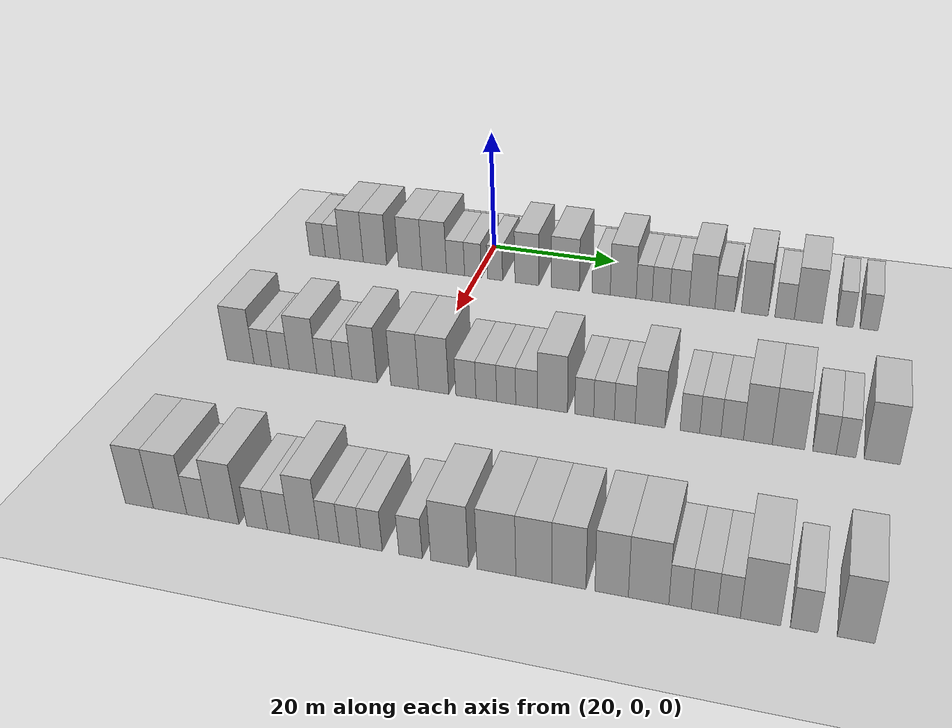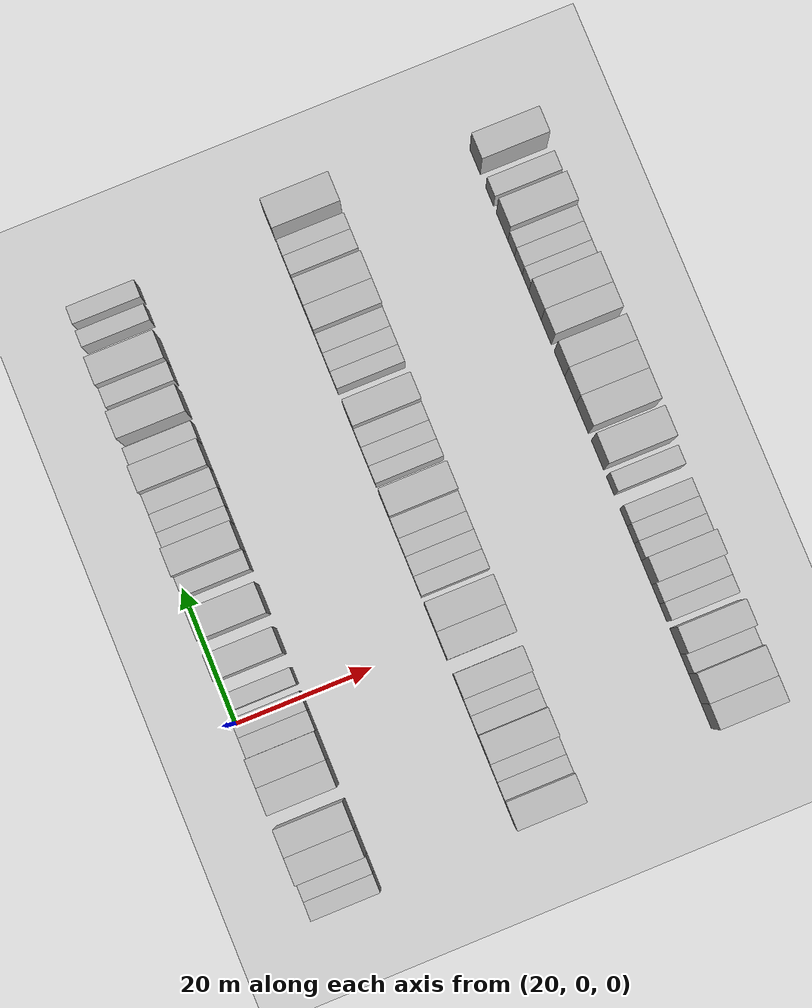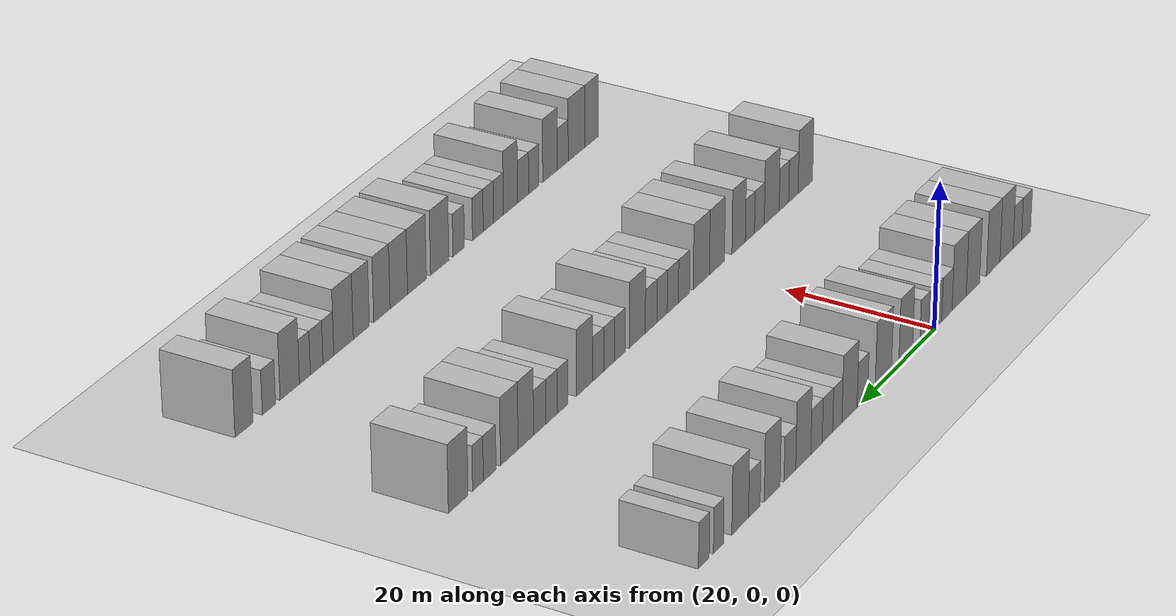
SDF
<sdf version="1.6">
 <world name="default">
  <include><name>ground_plane_1</name><uri>model://HANNAS_ground_plane</uri></include>
  <model name="building_107">
   <static>1</static>
   <pose>25.0000 -26.8414 0 0.000000 0.000000 0.000000</pose>
   <link name="link">
    <pose>0 0 3.00 0 0 0</pose>
    <collision name="collision"><geometry><box><size>10.0000 2.7232 6.0000</size></box></geometry></collision>
    <visual name="visual">
     <cast_shadows>0</cast_shadows>
     <geometry><box><size>10.0000 2.7232 6.0000</size></box></geometry>
     <material>
      <script>
       <uri>model://HANNAS_wall/materials/scripts</uri>
       <uri>model://HANNAS_wall/materials/textures</uri>
       <name>vrc/HANNAS_wall</name>
      </script>
     </material>
    </visual>
   </link>
  </model>
  <model name="building_108">
   <static>1</static>
   <pose>25.0000 -24.1851 0 0.000000 0.000000 0.000000</pose>
   <link name="link">
    <pose>0 0 3.00 0 0 0</pose>
    <collision name="collision"><geometry><box><size>10.0000 2.5895 6.0000</size></box></geometry></collision>
    <visual name="visual">
     <cast_shadows>0</cast_shadows>
     <geometry><box><size>10.0000 2.5895 6.0000</size></box></geometry>
     <material>
      <script>
       <uri>model://HANNAS_wall/materials/scripts</uri>
       <uri>model://HANNAS_wall/materials/textures</uri>
       <name>vrc/HANNAS_wall</name>
      </script>
     </material>
    </visual>
   </link>
  </model>
  <model name="building_109">
   <static>1</static>
   <pose>25.0000 -20.9219 0 0.000000 0.000000 0.000000</pose>
   <link name="link">
    <pose>0 0 4.50 0 0 0</pose>
    <collision name="collision"><geometry><box><size>10.0000 3.9367 9.0000</size></box></geometry></collision>
    <visual name="visual">
     <cast_shadows>0</cast_shadows>
     <geometry><box><size>10.0000 3.9367 9.0000</size></box></geometry>
     <material>
      <script>
       <uri>model://HANNAS_wall/materials/scripts</uri>
       <uri>model://HANNAS_wall/materials/textures</uri>
       <name>vrc/HANNAS_wall</name>
      </script>
     </material>
    </visual>
   </link>
  </model>
  <model name="building_110">
   <static>1</static>
   <pose>25.0000 -16.9616 0 0.000000 0.000000 0.000000</pose>
   <link name="link">
    <pose>0 0 4.50 0 0 0</pose>
    <collision name="collision"><geometry><box><size>10.0000 3.9840 9.0000</size></box></geometry></collision>
    <visual name="visual">
     <cast_shadows>0</cast_shadows>
     <geometry><box><size>10.0000 3.9840 9.0000</size></box></geometry>
     <material>
      <script>
       <uri>model://HANNAS_wall/materials/scripts</uri>
       <uri>model://HANNAS_wall/materials/textures</uri>
       <name>vrc/HANNAS_wall</name>
      </script>
     </material>
    </visual>
   </link>
  </model>
  <model name="building_111">
   <static>1</static>
   <pose>25.0000 -11.0109 0 0.000000 0.000000 0.000000</pose>
   <link name="link">
    <pose>0 0 4.50 0 0 0</pose>
    <collision name="collision"><geometry><box><size>10.0000 3.9174 9.0000</size></box></geometry></collision>
    <visual name="visual">
     <cast_shadows>0</cast_shadows>
     <geometry><box><size>10.0000 3.9174 9.0000</size></box></geometry>
     <material>
      <script>
       <uri>model://HANNAS_wall/materials/scripts</uri>
       <uri>model://HANNAS_wall/materials/textures</uri>
       <name>vrc/HANNAS_wall</name>
      </script>
     </material>
    </visual>
   </link>
  </model>
  <model name="building_112">
   <static>1</static>
   <pose>25.0000 -7.0067 0 0.000000 0.000000 0.000000</pose>
   <link name="link">
    <pose>0 0 4.50 0 0 0</pose>
    <collision name="collision"><geometry><box><size>10.0000 4.0909 9.0000</size></box></geometry></collision>
    <visual name="visual">
     <cast_shadows>0</cast_shadows>
     <geometry><box><size>10.0000 4.0909 9.0000</size></box></geometry>
     <material>
      <script>
       <uri>model://HANNAS_wall/materials/scripts</uri>
       <uri>model://HANNAS_wall/materials/textures</uri>
       <name>vrc/HANNAS_wall</name>
      </script>
     </material>
    </visual>
   </link>
  </model>
  <model name="building_113">
   <static>1</static>
   <pose>25.0000 -3.4789 0 0.000000 0.000000 0.000000</pose>
   <link name="link">
    <pose>0 0 3.00 0 0 0</pose>
    <collision name="collision"><geometry><box><size>10.0000 2.9646 6.0000</size></box></geometry></collision>
    <visual name="visual">
     <cast_shadows>0</cast_shadows>
     <geometry><box><size>10.0000 2.9646 6.0000</size></box></geometry>
     <material>
      <script>
       <uri>model://HANNAS_wall/materials/scripts</uri>
       <uri>model://HANNAS_wall/materials/textures</uri>
       <name>vrc/HANNAS_wall</name>
      </script>
     </material>
    </visual>
   </link>
  </model>
  <model name="building_114">
   <static>1</static>
   <pose>25.0000 -0.6291 0 0.000000 0.000000 0.000000</pose>
   <link name="link">
    <pose>0 0 3.00 0 0 0</pose>
    <collision name="collision"><geometry><box><size>10.0000 2.7350 6.0000</size></box></geometry></collision>
    <visual name="visual">
     <cast_shadows>0</cast_shadows>
     <geometry><box><size>10.0000 2.7350 6.0000</size></box></geometry>
     <material>
      <script>
       <uri>model://HANNAS_wall/materials/scripts</uri>
       <uri>model://HANNAS_wall/materials/textures</uri>
       <name>vrc/HANNAS_wall</name>
      </script>
     </material>
    </visual>
   </link>
  </model>
  <model name="building_115">
   <static>1</static>
   <pose>25.0000 2.9704 0 0.000000 0.000000 0.000000</pose>
   <link name="link">
    <pose>0 0 3.00 0 0 0</pose>
    <collision name="collision"><geometry><box><size>10.0000 2.4640 6.0000</size></box></geometry></collision>
    <visual name="visual">
     <cast_shadows>0</cast_shadows>
     <geometry><box><size>10.0000 2.4640 6.0000</size></box></geometry>
     <material>
      <script>
       <uri>model://HANNAS_wall/materials/scripts</uri>
       <uri>model://HANNAS_wall/materials/textures</uri>
       <name>vrc/HANNAS_wall</name>
      </script>
     </material>
    </visual>
   </link>
  </model>
  <model name="building_116">
   <static>1</static>
   <pose>25.0000 8.1107 0 0.000000 0.000000 0.000000</pose>
   <link name="link">
    <pose>0 0 4.50 0 0 0</pose>
    <collision name="collision"><geometry><box><size>10.0000 3.8165 9.0000</size></box></geometry></collision>
    <visual name="visual">
     <cast_shadows>0</cast_shadows>
     <geometry><box><size>10.0000 3.8165 9.0000</size></box></geometry>
     <material>
      <script>
       <uri>model://HANNAS_wall/materials/scripts</uri>
       <uri>model://HANNAS_wall/materials/textures</uri>
       <name>vrc/HANNAS_wall</name>
      </script>
     </material>
    </visual>
   </link>
  </model>
  <model name="building_117">
   <static>1</static>
   <pose>25.0000 14.2396 0 0.000000 0.000000 0.000000</pose>
   <link name="link">
    <pose>0 0 4.50 0 0 0</pose>
    <collision name="collision"><geometry><box><size>10.0000 4.4413 9.0000</size></box></geometry></collision>
    <visual name="visual">
     <cast_shadows>0</cast_shadows>
     <geometry><box><size>10.0000 4.4413 9.0000</size></box></geometry>
     <material>
      <script>
       <uri>model://HANNAS_wall/materials/scripts</uri>
       <uri>model://HANNAS_wall/materials/textures</uri>
       <name>vrc/HANNAS_wall</name>
      </script>
     </material>
    </visual>
   </link>
  </model>
  <model name="building_118">
   <static>1</static>
   <pose>25.0000 19.8799 0 0.000000 0.000000 0.000000</pose>
   <link name="link">
    <pose>0 0 3.00 0 0 0</pose>
    <collision name="collision"><geometry><box><size>10.0000 2.8394 6.0000</size></box></geometry></collision>
    <visual name="visual">
     <cast_shadows>0</cast_shadows>
     <geometry><box><size>10.0000 2.8394 6.0000</size></box></geometry>
     <material>
      <script>
       <uri>model://HANNAS_wall/materials/scripts</uri>
       <uri>model://HANNAS_wall/materials/textures</uri>
       <name>vrc/HANNAS_wall</name>
      </script>
     </material>
    </visual>
   </link>
  </model>
  <model name="building_119">
   <static>1</static>
   <pose>25.0000 23.3126 0 0.000000 0.000000 0.000000</pose>
   <link name="link">
    <pose>0 0 4.50 0 0 0</pose>
    <collision name="collision"><geometry><box><size>10.0000 4.0260 9.0000</size></box></geometry></collision>
    <visual name="visual">
     <cast_shadows>0</cast_shadows>
     <geometry><box><size>10.0000 4.0260 9.0000</size></box></geometry>
     <material>
      <script>
       <uri>model://HANNAS_wall/materials/scripts</uri>
       <uri>model://HANNAS_wall/materials/textures</uri>
       <name>vrc/HANNAS_wall</name>
      </script>
     </material>
    </visual>
   </link>
  </model>
  <model name="building_120">
   <static>1</static>
   <pose>25.0000 26.5560 0 0.000000 0.000000 0.000000</pose>
   <link name="link">
    <pose>0 0 3.00 0 0 0</pose>
    <collision name="collision"><geometry><box><size>10.0000 2.4607 6.0000</size></box></geometry></collision>
    <visual name="visual">
     <cast_shadows>0</cast_shadows>
     <geometry><box><size>10.0000 2.4607 6.0000</size></box></geometry>
     <material>
      <script>
       <uri>model://HANNAS_wall/materials/scripts</uri>
       <uri>model://HANNAS_wall/materials/textures</uri>
       <name>vrc/HANNAS_wall</name>
      </script>
     </material>
    </visual>
   </link>
  </model>
  <model name="building_121">
   <static>1</static>
   <pose>25.0000 29.1325 0 0.000000 0.000000 0.000000</pose>
   <link name="link">
    <pose>0 0 3.00 0 0 0</pose>
    <collision name="collision"><geometry><box><size>10.0000 2.6924 6.0000</size></box></geometry></collision>
    <visual name="visual">
     <cast_shadows>0</cast_shadows>
     <geometry><box><size>10.0000 2.6924 6.0000</size></box></geometry>
     <material>
      <script>
       <uri>model://HANNAS_wall/materials/scripts</uri>
       <uri>model://HANNAS_wall/materials/textures</uri>
       <name>vrc/HANNAS_wall</name>
      </script>
     </material>
    </visual>
   </link>
  </model>
  <model name="building_122">
   <static>1</static>
   <pose>25.0000 31.9554 0 0.000000 0.000000 0.000000</pose>
   <link name="link">
    <pose>0 0 3.00 0 0 0</pose>
    <collision name="collision"><geometry><box><size>10.0000 2.9533 6.0000</size></box></geometry></collision>
    <visual name="visual">
     <cast_shadows>0</cast_shadows>
     <geometry><box><size>10.0000 2.9533 6.0000</size></box></geometry>
     <material>
      <script>
       <uri>model://HANNAS_wall/materials/scripts</uri>
       <uri>model://HANNAS_wall/materials/textures</uri>
       <name>vrc/HANNAS_wall</name>
      </script>
     </material>
    </visual>
   </link>
  </model>
  <model name="building_123">
   <static>1</static>
   <pose>25.0000 35.3695 0 0.000000 0.000000 0.000000</pose>
   <link name="link">
    <pose>0 0 4.50 0 0 0</pose>
    <collision name="collision"><geometry><box><size>10.0000 3.8748 9.0000</size></box></geometry></collision>
    <visual name="visual">
     <cast_shadows>0</cast_shadows>
     <geometry><box><size>10.0000 3.8748 9.0000</size></box></geometry>
     <material>
      <script>
       <uri>model://HANNAS_wall/materials/scripts</uri>
       <uri>model://HANNAS_wall/materials/textures</uri>
       <name>vrc/HANNAS_wall</name>
      </script>
     </material>
    </visual>
   </link>
  </model>
  <model name="building_124">
   <static>1</static>
   <pose>25.0000 38.7760 0 0.000000 0.000000 0.000000</pose>
   <link name="link">
    <pose>0 0 3.00 0 0 0</pose>
    <collision name="collision"><geometry><box><size>10.0000 2.9383 6.0000</size></box></geometry></collision>
    <visual name="visual">
     <cast_shadows>0</cast_shadows>
     <geometry><box><size>10.0000 2.9383 6.0000</size></box></geometry>
     <material>
      <script>
       <uri>model://HANNAS_wall/materials/scripts</uri>
       <uri>model://HANNAS_wall/materials/textures</uri>
       <name>vrc/HANNAS_wall</name>
      </script>
     </material>
    </visual>
   </link>
  </model>
  <model name="building_125">
   <static>1</static>
   <pose>25.0000 43.2336 0 0.000000 0.000000 0.000000</pose>
   <link name="link">
    <pose>0 0 4.50 0 0 0</pose>
    <collision name="collision"><geometry><box><size>10.0000 3.9769 9.0000</size></box></geometry></collision>
    <visual name="visual">
     <cast_shadows>0</cast_shadows>
     <geometry><box><size>10.0000 3.9769 9.0000</size></box></geometry>
     <material>
      <script>
       <uri>model://HANNAS_wall/materials/scripts</uri>
       <uri>model://HANNAS_wall/materials/textures</uri>
       <name>vrc/HANNAS_wall</name>
      </script>
     </material>
    </visual>
   </link>
  </model>
  <model name="building_126">
   <static>1</static>
   <pose>25.0000 47.6449 0 0.000000 0.000000 0.000000</pose>
   <link name="link">
    <pose>0 0 3.00 0 0 0</pose>
    <collision name="collision"><geometry><box><size>10.0000 2.8457 6.0000</size></box></geometry></collision>
    <visual name="visual">
     <cast_shadows>0</cast_shadows>
     <geometry><box><size>10.0000 2.8457 6.0000</size></box></geometry>
     <material>
      <script>
       <uri>model://HANNAS_wall/materials/scripts</uri>
       <uri>model://HANNAS_wall/materials/textures</uri>
       <name>vrc/HANNAS_wall</name>
      </script>
     </material>
    </visual>
   </link>
  </model>
  <model name="building_127">
   <static>1</static>
   <pose>25.0000 51.1148 0 0.000000 0.000000 0.000000</pose>
   <link name="link">
    <pose>0 0 4.50 0 0 0</pose>
    <collision name="collision"><geometry><box><size>10.0000 4.0939 9.0000</size></box></geometry></collision>
    <visual name="visual">
     <cast_shadows>0</cast_shadows>
     <geometry><box><size>10.0000 4.0939 9.0000</size></box></geometry>
     <material>
      <script>
       <uri>model://HANNAS_wall/materials/scripts</uri>
       <uri>model://HANNAS_wall/materials/textures</uri>
       <name>vrc/HANNAS_wall</name>
      </script>
     </material>
    </visual>
   </link>
  </model>
  <model name="building_128">
   <static>1</static>
   <pose>25.0000 56.3729 0 0.000000 0.000000 0.000000</pose>
   <link name="link">
    <pose>0 0 3.00 0 0 0</pose>
    <collision name="collision"><geometry><box><size>10.0000 2.4222 6.0000</size></box></geometry></collision>
    <visual name="visual">
     <cast_shadows>0</cast_shadows>
     <geometry><box><size>10.0000 2.4222 6.0000</size></box></geometry>
     <material>
      <script>
       <uri>model://HANNAS_wall/materials/scripts</uri>
       <uri>model://HANNAS_wall/materials/textures</uri>
       <name>vrc/HANNAS_wall</name>
      </script>
     </material>
    </visual>
   </link>
  </model>
  <model name="building_129">
   <static>1</static>
   <pose>25.0000 59.8632 0 0.000000 0.000000 0.000000</pose>
   <link name="link">
    <pose>0 0 3.00 0 0 0</pose>
    <collision name="collision"><geometry><box><size>10.0000 2.5585 6.0000</size></box></geometry></collision>
    <visual name="visual">
     <cast_shadows>0</cast_shadows>
     <geometry><box><size>10.0000 2.5585 6.0000</size></box></geometry>
     <material>
      <script>
       <uri>model://HANNAS_wall/materials/scripts</uri>
       <uri>model://HANNAS_wall/materials/textures</uri>
       <name>vrc/HANNAS_wall</name>
      </script>
     </material>
    </visual>
   </link>
  </model>
  <model name="building_334">
   <static>1</static>
   <pose>55.0000 -25.3010 0 0.000000 0.000000 0.000000</pose>
   <link name="link">
    <pose>0 0 4.50 0 0 0</pose>
    <collision name="collision"><geometry><box><size>10.0000 4.1168 9.0000</size></box></geometry></collision>
    <visual name="visual">
     <cast_shadows>0</cast_shadows>
     <geometry><box><size>10.0000 4.1168 9.0000</size></box></geometry>
     <material>
      <script>
       <uri>model://HANNAS_wall/materials/scripts</uri>
       <uri>model://HANNAS_wall/materials/textures</uri>
       <name>vrc/HANNAS_wall</name>
      </script>
     </material>
    </visual>
   </link>
  </model>
  <model name="building_335">
   <static>1</static>
   <pose>55.0000 -21.9201 0 0.000000 0.000000 0.000000</pose>
   <link name="link">
    <pose>0 0 3.00 0 0 0</pose>
    <collision name="collision"><geometry><box><size>10.0000 2.6448 6.0000</size></box></geometry></collision>
    <visual name="visual">
     <cast_shadows>0</cast_shadows>
     <geometry><box><size>10.0000 2.6448 6.0000</size></box></geometry>
     <material>
      <script>
       <uri>model://HANNAS_wall/materials/scripts</uri>
       <uri>model://HANNAS_wall/materials/textures</uri>
       <name>vrc/HANNAS_wall</name>
      </script>
     </material>
    </visual>
   </link>
  </model>
  <model name="building_336">
   <static>1</static>
   <pose>55.0000 -19.2560 0 0.000000 0.000000 0.000000</pose>
   <link name="link">
    <pose>0 0 3.00 0 0 0</pose>
    <collision name="collision"><geometry><box><size>10.0000 2.6834 6.0000</size></box></geometry></collision>
    <visual name="visual">
     <cast_shadows>0</cast_shadows>
     <geometry><box><size>10.0000 2.6834 6.0000</size></box></geometry>
     <material>
      <script>
       <uri>model://HANNAS_wall/materials/scripts</uri>
       <uri>model://HANNAS_wall/materials/textures</uri>
       <name>vrc/HANNAS_wall</name>
      </script>
     </material>
    </visual>
   </link>
  </model>
  <model name="building_337">
   <static>1</static>
   <pose>55.0000 -15.8534 0 0.000000 0.000000 0.000000</pose>
   <link name="link">
    <pose>0 0 4.50 0 0 0</pose>
    <collision name="collision"><geometry><box><size>10.0000 4.1218 9.0000</size></box></geometry></collision>
    <visual name="visual">
     <cast_shadows>0</cast_shadows>
     <geometry><box><size>10.0000 4.1218 9.0000</size></box></geometry>
     <material>
      <script>
       <uri>model://HANNAS_wall/materials/scripts</uri>
       <uri>model://HANNAS_wall/materials/textures</uri>
       <name>vrc/HANNAS_wall</name>
      </script>
     </material>
    </visual>
   </link>
  </model>
  <model name="building_338">
   <static>1</static>
   <pose>55.0000 -12.4436 0 0.000000 0.000000 0.000000</pose>
   <link name="link">
    <pose>0 0 3.00 0 0 0</pose>
    <collision name="collision"><geometry><box><size>10.0000 2.6978 6.0000</size></box></geometry></collision>
    <visual name="visual">
     <cast_shadows>0</cast_shadows>
     <geometry><box><size>10.0000 2.6978 6.0000</size></box></geometry>
     <material>
      <script>
       <uri>model://HANNAS_wall/materials/scripts</uri>
       <uri>model://HANNAS_wall/materials/textures</uri>
       <name>vrc/HANNAS_wall</name>
      </script>
     </material>
    </visual>
   </link>
  </model>
  <model name="building_339">
   <static>1</static>
   <pose>55.0000 -9.8529 0 0.000000 0.000000 0.000000</pose>
   <link name="link">
    <pose>0 0 3.00 0 0 0</pose>
    <collision name="collision"><geometry><box><size>10.0000 2.4837 6.0000</size></box></geometry></collision>
    <visual name="visual">
     <cast_shadows>0</cast_shadows>
     <geometry><box><size>10.0000 2.4837 6.0000</size></box></geometry>
     <material>
      <script>
       <uri>model://HANNAS_wall/materials/scripts</uri>
       <uri>model://HANNAS_wall/materials/textures</uri>
       <name>vrc/HANNAS_wall</name>
      </script>
     </material>
    </visual>
   </link>
  </model>
  <model name="building_340">
   <static>1</static>
   <pose>55.0000 -6.7780 0 0.000000 0.000000 0.000000</pose>
   <link name="link">
    <pose>0 0 4.50 0 0 0</pose>
    <collision name="collision"><geometry><box><size>10.0000 3.6661 9.0000</size></box></geometry></collision>
    <visual name="visual">
     <cast_shadows>0</cast_shadows>
     <geometry><box><size>10.0000 3.6661 9.0000</size></box></geometry>
     <material>
      <script>
       <uri>model://HANNAS_wall/materials/scripts</uri>
       <uri>model://HANNAS_wall/materials/textures</uri>
       <name>vrc/HANNAS_wall</name>
      </script>
     </material>
    </visual>
   </link>
  </model>
  <model name="building_341">
   <static>1</static>
   <pose>55.0000 -0.9476 0 0.000000 0.000000 0.000000</pose>
   <link name="link">
    <pose>0 0 4.50 0 0 0</pose>
    <collision name="collision"><geometry><box><size>10.0000 3.9945 9.0000</size></box></geometry></collision>
    <visual name="visual">
     <cast_shadows>0</cast_shadows>
     <geometry><box><size>10.0000 3.9945 9.0000</size></box></geometry>
     <material>
      <script>
       <uri>model://HANNAS_wall/materials/scripts</uri>
       <uri>model://HANNAS_wall/materials/textures</uri>
       <name>vrc/HANNAS_wall</name>
      </script>
     </material>
    </visual>
   </link>
  </model>
  <model name="building_342">
   <static>1</static>
   <pose>55.0000 3.1972 0 0.000000 0.000000 0.000000</pose>
   <link name="link">
    <pose>0 0 4.50 0 0 0</pose>
    <collision name="collision"><geometry><box><size>10.0000 4.2952 9.0000</size></box></geometry></collision>
    <visual name="visual">
     <cast_shadows>0</cast_shadows>
     <geometry><box><size>10.0000 4.2952 9.0000</size></box></geometry>
     <material>
      <script>
       <uri>model://HANNAS_wall/materials/scripts</uri>
       <uri>model://HANNAS_wall/materials/textures</uri>
       <name>vrc/HANNAS_wall</name>
      </script>
     </material>
    </visual>
   </link>
  </model>
  <model name="building_343">
   <static>1</static>
   <pose>55.0000 7.7657 0 0.000000 0.000000 0.000000</pose>
   <link name="link">
    <pose>0 0 3.00 0 0 0</pose>
    <collision name="collision"><geometry><box><size>10.0000 2.8419 6.0000</size></box></geometry></collision>
    <visual name="visual">
     <cast_shadows>0</cast_shadows>
     <geometry><box><size>10.0000 2.8419 6.0000</size></box></geometry>
     <material>
      <script>
       <uri>model://HANNAS_wall/materials/scripts</uri>
       <uri>model://HANNAS_wall/materials/textures</uri>
       <name>vrc/HANNAS_wall</name>
      </script>
     </material>
    </visual>
   </link>
  </model>
  <model name="building_344">
   <static>1</static>
   <pose>55.0000 10.6268 0 0.000000 0.000000 0.000000</pose>
   <link name="link">
    <pose>0 0 3.00 0 0 0</pose>
    <collision name="collision"><geometry><box><size>10.0000 2.8801 6.0000</size></box></geometry></collision>
    <visual name="visual">
     <cast_shadows>0</cast_shadows>
     <geometry><box><size>10.0000 2.8801 6.0000</size></box></geometry>
     <material>
      <script>
       <uri>model://HANNAS_wall/materials/scripts</uri>
       <uri>model://HANNAS_wall/materials/textures</uri>
       <name>vrc/HANNAS_wall</name>
      </script>
     </material>
    </visual>
   </link>
  </model>
  <model name="building_345">
   <static>1</static>
   <pose>55.0000 13.3863 0 0.000000 0.000000 0.000000</pose>
   <link name="link">
    <pose>0 0 3.00 0 0 0</pose>
    <collision name="collision"><geometry><box><size>10.0000 2.6389 6.0000</size></box></geometry></collision>
    <visual name="visual">
     <cast_shadows>0</cast_shadows>
     <geometry><box><size>10.0000 2.6389 6.0000</size></box></geometry>
     <material>
      <script>
       <uri>model://HANNAS_wall/materials/scripts</uri>
       <uri>model://HANNAS_wall/materials/textures</uri>
       <name>vrc/HANNAS_wall</name>
      </script>
     </material>
    </visual>
   </link>
  </model>
  <model name="building_346">
   <static>1</static>
   <pose>55.0000 16.2051 0 0.000000 0.000000 0.000000</pose>
   <link name="link">
    <pose>0 0 3.00 0 0 0</pose>
    <collision name="collision"><geometry><box><size>10.0000 2.9988 6.0000</size></box></geometry></collision>
    <visual name="visual">
     <cast_shadows>0</cast_shadows>
     <geometry><box><size>10.0000 2.9988 6.0000</size></box></geometry>
     <material>
      <script>
       <uri>model://HANNAS_wall/materials/scripts</uri>
       <uri>model://HANNAS_wall/materials/textures</uri>
       <name>vrc/HANNAS_wall</name>
      </script>
     </material>
    </visual>
   </link>
  </model>
  <model name="building_347">
   <static>1</static>
   <pose>55.0000 19.7422 0 0.000000 0.000000 0.000000</pose>
   <link name="link">
    <pose>0 0 4.50 0 0 0</pose>
    <collision name="collision"><geometry><box><size>10.0000 4.0753 9.0000</size></box></geometry></collision>
    <visual name="visual">
     <cast_shadows>0</cast_shadows>
     <geometry><box><size>10.0000 4.0753 9.0000</size></box></geometry>
     <material>
      <script>
       <uri>model://HANNAS_wall/materials/scripts</uri>
       <uri>model://HANNAS_wall/materials/textures</uri>
       <name>vrc/HANNAS_wall</name>
      </script>
     </material>
    </visual>
   </link>
  </model>
  <model name="building_348">
   <static>1</static>
   <pose>55.0000 24.0510 0 0.000000 0.000000 0.000000</pose>
   <link name="link">
    <pose>0 0 3.00 0 0 0</pose>
    <collision name="collision"><geometry><box><size>10.0000 2.5423 6.0000</size></box></geometry></collision>
    <visual name="visual">
     <cast_shadows>0</cast_shadows>
     <geometry><box><size>10.0000 2.5423 6.0000</size></box></geometry>
     <material>
      <script>
       <uri>model://HANNAS_wall/materials/scripts</uri>
       <uri>model://HANNAS_wall/materials/textures</uri>
       <name>vrc/HANNAS_wall</name>
      </script>
     </material>
    </visual>
   </link>
  </model>
  <model name="building_349">
   <static>1</static>
   <pose>55.0000 26.7047 0 0.000000 0.000000 0.000000</pose>
   <link name="link">
    <pose>0 0 3.00 0 0 0</pose>
    <collision name="collision"><geometry><box><size>10.0000 2.7652 6.0000</size></box></geometry></collision>
    <visual name="visual">
     <cast_shadows>0</cast_shadows>
     <geometry><box><size>10.0000 2.7652 6.0000</size></box></geometry>
     <material>
      <script>
       <uri>model://HANNAS_wall/materials/scripts</uri>
       <uri>model://HANNAS_wall/materials/textures</uri>
       <name>vrc/HANNAS_wall</name>
      </script>
     </material>
    </visual>
   </link>
  </model>
  <model name="building_350">
   <static>1</static>
   <pose>55.0000 29.4556 0 0.000000 0.000000 0.000000</pose>
   <link name="link">
    <pose>0 0 3.00 0 0 0</pose>
    <collision name="collision"><geometry><box><size>10.0000 2.7365 6.0000</size></box></geometry></collision>
    <visual name="visual">
     <cast_shadows>0</cast_shadows>
     <geometry><box><size>10.0000 2.7365 6.0000</size></box></geometry>
     <material>
      <script>
       <uri>model://HANNAS_wall/materials/scripts</uri>
       <uri>model://HANNAS_wall/materials/textures</uri>
       <name>vrc/HANNAS_wall</name>
      </script>
     </material>
    </visual>
   </link>
  </model>
  <model name="building_351">
   <static>1</static>
   <pose>55.0000 32.7823 0 0.000000 0.000000 0.000000</pose>
   <link name="link">
    <pose>0 0 4.50 0 0 0</pose>
    <collision name="collision"><geometry><box><size>10.0000 3.9169 9.0000</size></box></geometry></collision>
    <visual name="visual">
     <cast_shadows>0</cast_shadows>
     <geometry><box><size>10.0000 3.9169 9.0000</size></box></geometry>
     <material>
      <script>
       <uri>model://HANNAS_wall/materials/scripts</uri>
       <uri>model://HANNAS_wall/materials/textures</uri>
       <name>vrc/HANNAS_wall</name>
      </script>
     </material>
    </visual>
   </link>
  </model>
  <model name="building_352">
   <static>1</static>
   <pose>55.0000 38.0110 0 0.000000 0.000000 0.000000</pose>
   <link name="link">
    <pose>0 0 3.00 0 0 0</pose>
    <collision name="collision"><geometry><box><size>10.0000 2.5406 6.0000</size></box></geometry></collision>
    <visual name="visual">
     <cast_shadows>0</cast_shadows>
     <geometry><box><size>10.0000 2.5406 6.0000</size></box></geometry>
     <material>
      <script>
       <uri>model://HANNAS_wall/materials/scripts</uri>
       <uri>model://HANNAS_wall/materials/textures</uri>
       <name>vrc/HANNAS_wall</name>
      </script>
     </material>
    </visual>
   </link>
  </model>
  <model name="building_353">
   <static>1</static>
   <pose>55.0000 40.6466 0 0.000000 0.000000 0.000000</pose>
   <link name="link">
    <pose>0 0 3.00 0 0 0</pose>
    <collision name="collision"><geometry><box><size>10.0000 2.7306 6.0000</size></box></geometry></collision>
    <visual name="visual">
     <cast_shadows>0</cast_shadows>
     <geometry><box><size>10.0000 2.7306 6.0000</size></box></geometry>
     <material>
      <script>
       <uri>model://HANNAS_wall/materials/scripts</uri>
       <uri>model://HANNAS_wall/materials/textures</uri>
       <name>vrc/HANNAS_wall</name>
      </script>
     </material>
    </visual>
   </link>
  </model>
  <model name="building_354">
   <static>1</static>
   <pose>55.0000 43.4528 0 0.000000 0.000000 0.000000</pose>
   <link name="link">
    <pose>0 0 3.00 0 0 0</pose>
    <collision name="collision"><geometry><box><size>10.0000 2.8818 6.0000</size></box></geometry></collision>
    <visual name="visual">
     <cast_shadows>0</cast_shadows>
     <geometry><box><size>10.0000 2.8818 6.0000</size></box></geometry>
     <material>
      <script>
       <uri>model://HANNAS_wall/materials/scripts</uri>
       <uri>model://HANNAS_wall/materials/textures</uri>
       <name>vrc/HANNAS_wall</name>
      </script>
     </material>
    </visual>
   </link>
  </model>
  <model name="building_355">
   <static>1</static>
   <pose>55.0000 46.7141 0 0.000000 0.000000 0.000000</pose>
   <link name="link">
    <pose>0 0 4.50 0 0 0</pose>
    <collision name="collision"><geometry><box><size>10.0000 3.6406 9.0000</size></box></geometry></collision>
    <visual name="visual">
     <cast_shadows>0</cast_shadows>
     <geometry><box><size>10.0000 3.6406 9.0000</size></box></geometry>
     <material>
      <script>
       <uri>model://HANNAS_wall/materials/scripts</uri>
       <uri>model://HANNAS_wall/materials/textures</uri>
       <name>vrc/HANNAS_wall</name>
      </script>
     </material>
    </visual>
   </link>
  </model>
  <model name="building_356">
   <static>1</static>
   <pose>55.0000 50.5705 0 0.000000 0.000000 0.000000</pose>
   <link name="link">
    <pose>0 0 4.50 0 0 0</pose>
    <collision name="collision"><geometry><box><size>10.0000 4.0722 9.0000</size></box></geometry></collision>
    <visual name="visual">
     <cast_shadows>0</cast_shadows>
     <geometry><box><size>10.0000 4.0722 9.0000</size></box></geometry>
     <material>
      <script>
       <uri>model://HANNAS_wall/materials/scripts</uri>
       <uri>model://HANNAS_wall/materials/textures</uri>
       <name>vrc/HANNAS_wall</name>
      </script>
     </material>
    </visual>
   </link>
  </model>
  <model name="building_357">
   <static>1</static>
   <pose>55.0000 55.0524 0 0.000000 0.000000 0.000000</pose>
   <link name="link">
    <pose>0 0 3.00 0 0 0</pose>
    <collision name="collision"><geometry><box><size>10.0000 2.8916 6.0000</size></box></geometry></collision>
    <visual name="visual">
     <cast_shadows>0</cast_shadows>
     <geometry><box><size>10.0000 2.8916 6.0000</size></box></geometry>
     <material>
      <script>
       <uri>model://HANNAS_wall/materials/scripts</uri>
       <uri>model://HANNAS_wall/materials/textures</uri>
       <name>vrc/HANNAS_wall</name>
      </script>
     </material>
    </visual>
   </link>
  </model>
  <model name="building_358">
   <static>1</static>
   <pose>55.0000 57.7194 0 0.000000 0.000000 0.000000</pose>
   <link name="link">
    <pose>0 0 3.00 0 0 0</pose>
    <collision name="collision"><geometry><box><size>10.0000 2.4426 6.0000</size></box></geometry></collision>
    <visual name="visual">
     <cast_shadows>0</cast_shadows>
     <geometry><box><size>10.0000 2.4426 6.0000</size></box></geometry>
     <material>
      <script>
       <uri>model://HANNAS_wall/materials/scripts</uri>
       <uri>model://HANNAS_wall/materials/textures</uri>
       <name>vrc/HANNAS_wall</name>
      </script>
     </material>
    </visual>
   </link>
  </model>
  <model name="building_359">
   <static>1</static>
   <pose>55.0000 62.1311 0 0.000000 0.000000 0.000000</pose>
   <link name="link">
    <pose>0 0 4.50 0 0 0</pose>
    <collision name="collision"><geometry><box><size>10.0000 4.3808 9.0000</size></box></geometry></collision>
    <visual name="visual">
     <cast_shadows>0</cast_shadows>
     <geometry><box><size>10.0000 4.3808 9.0000</size></box></geometry>
     <material>
      <script>
       <uri>model://HANNAS_wall/materials/scripts</uri>
       <uri>model://HANNAS_wall/materials/textures</uri>
       <name>vrc/HANNAS_wall</name>
      </script>
     </material>
    </visual>
   </link>
  </model>
  <model name="building_556">
   <static>1</static>
   <pose>85.0000 -23.3759 0 0.000000 0.000000 0.000000</pose>
   <link name="link">
    <pose>0 0 4.50 0 0 0</pose>
    <collision name="collision"><geometry><box><size>10.0000 3.7076 9.0000</size></box></geometry></collision>
    <visual name="visual">
     <cast_shadows>0</cast_shadows>
     <geometry><box><size>10.0000 3.7076 9.0000</size></box></geometry>
     <material>
      <script>
       <uri>model://HANNAS_wall/materials/scripts</uri>
       <uri>model://HANNAS_wall/materials/textures</uri>
       <name>vrc/HANNAS_wall</name>
      </script>
     </material>
    </visual>
   </link>
  </model>
  <model name="building_557">
   <static>1</static>
   <pose>85.0000 -19.3259 0 0.000000 0.000000 0.000000</pose>
   <link name="link">
    <pose>0 0 4.50 0 0 0</pose>
    <collision name="collision"><geometry><box><size>10.0000 4.3923 9.0000</size></box></geometry></collision>
    <visual name="visual">
     <cast_shadows>0</cast_shadows>
     <geometry><box><size>10.0000 4.3923 9.0000</size></box></geometry>
     <material>
      <script>
       <uri>model://HANNAS_wall/materials/scripts</uri>
       <uri>model://HANNAS_wall/materials/textures</uri>
       <name>vrc/HANNAS_wall</name>
      </script>
     </material>
    </visual>
   </link>
  </model>
  <model name="building_558">
   <static>1</static>
   <pose>85.0000 -15.7031 0 0.000000 0.000000 0.000000</pose>
   <link name="link">
    <pose>0 0 3.00 0 0 0</pose>
    <collision name="collision"><geometry><box><size>10.0000 2.8534 6.0000</size></box></geometry></collision>
    <visual name="visual">
     <cast_shadows>0</cast_shadows>
     <geometry><box><size>10.0000 2.8534 6.0000</size></box></geometry>
     <material>
      <script>
       <uri>model://HANNAS_wall/materials/scripts</uri>
       <uri>model://HANNAS_wall/materials/textures</uri>
       <name>vrc/HANNAS_wall</name>
      </script>
     </material>
    </visual>
   </link>
  </model>
  <model name="building_559">
   <static>1</static>
   <pose>85.0000 -12.3597 0 0.000000 0.000000 0.000000</pose>
   <link name="link">
    <pose>0 0 4.50 0 0 0</pose>
    <collision name="collision"><geometry><box><size>10.0000 3.8334 9.0000</size></box></geometry></collision>
    <visual name="visual">
     <cast_shadows>0</cast_shadows>
     <geometry><box><size>10.0000 3.8334 9.0000</size></box></geometry>
     <material>
      <script>
       <uri>model://HANNAS_wall/materials/scripts</uri>
       <uri>model://HANNAS_wall/materials/textures</uri>
       <name>vrc/HANNAS_wall</name>
      </script>
     </material>
    </visual>
   </link>
  </model>
  <model name="building_560">
   <static>1</static>
   <pose>85.0000 -8.1338 0 0.000000 0.000000 0.000000</pose>
   <link name="link">
    <pose>0 0 3.00 0 0 0</pose>
    <collision name="collision"><geometry><box><size>10.0000 2.6183 6.0000</size></box></geometry></collision>
    <visual name="visual">
     <cast_shadows>0</cast_shadows>
     <geometry><box><size>10.0000 2.6183 6.0000</size></box></geometry>
     <material>
      <script>
       <uri>model://HANNAS_wall/materials/scripts</uri>
       <uri>model://HANNAS_wall/materials/textures</uri>
       <name>vrc/HANNAS_wall</name>
      </script>
     </material>
    </visual>
   </link>
  </model>
  <model name="building_561">
   <static>1</static>
   <pose>85.0000 -5.4077 0 0.000000 0.000000 0.000000</pose>
   <link name="link">
    <pose>0 0 3.00 0 0 0</pose>
    <collision name="collision"><geometry><box><size>10.0000 2.8340 6.0000</size></box></geometry></collision>
    <visual name="visual">
     <cast_shadows>0</cast_shadows>
     <geometry><box><size>10.0000 2.8340 6.0000</size></box></geometry>
     <material>
      <script>
       <uri>model://HANNAS_wall/materials/scripts</uri>
       <uri>model://HANNAS_wall/materials/textures</uri>
       <name>vrc/HANNAS_wall</name>
      </script>
     </material>
    </visual>
   </link>
  </model>
  <model name="building_562">
   <static>1</static>
   <pose>85.0000 -2.1822 0 0.000000 0.000000 0.000000</pose>
   <link name="link">
    <pose>0 0 4.50 0 0 0</pose>
    <collision name="collision"><geometry><box><size>10.0000 3.6170 9.0000</size></box></geometry></collision>
    <visual name="visual">
     <cast_shadows>0</cast_shadows>
     <geometry><box><size>10.0000 3.6170 9.0000</size></box></geometry>
     <material>
      <script>
       <uri>model://HANNAS_wall/materials/scripts</uri>
       <uri>model://HANNAS_wall/materials/textures</uri>
       <name>vrc/HANNAS_wall</name>
      </script>
     </material>
    </visual>
   </link>
  </model>
  <model name="building_563">
   <static>1</static>
   <pose>85.0000 0.8774 0 0.000000 0.000000 0.000000</pose>
   <link name="link">
    <pose>0 0 3.00 0 0 0</pose>
    <collision name="collision"><geometry><box><size>10.0000 2.5021 6.0000</size></box></geometry></collision>
    <visual name="visual">
     <cast_shadows>0</cast_shadows>
     <geometry><box><size>10.0000 2.5021 6.0000</size></box></geometry>
     <material>
      <script>
       <uri>model://HANNAS_wall/materials/scripts</uri>
       <uri>model://HANNAS_wall/materials/textures</uri>
       <name>vrc/HANNAS_wall</name>
      </script>
     </material>
    </visual>
   </link>
  </model>
  <model name="building_564">
   <static>1</static>
   <pose>85.0000 3.4131 0 0.000000 0.000000 0.000000</pose>
   <link name="link">
    <pose>0 0 3.00 0 0 0</pose>
    <collision name="collision"><geometry><box><size>10.0000 2.5694 6.0000</size></box></geometry></collision>
    <visual name="visual">
     <cast_shadows>0</cast_shadows>
     <geometry><box><size>10.0000 2.5694 6.0000</size></box></geometry>
     <material>
      <script>
       <uri>model://HANNAS_wall/materials/scripts</uri>
       <uri>model://HANNAS_wall/materials/textures</uri>
       <name>vrc/HANNAS_wall</name>
      </script>
     </material>
    </visual>
   </link>
  </model>
  <model name="building_565">
   <static>1</static>
   <pose>85.0000 6.0336 0 0.000000 0.000000 0.000000</pose>
   <link name="link">
    <pose>0 0 3.00 0 0 0</pose>
    <collision name="collision"><geometry><box><size>10.0000 2.6716 6.0000</size></box></geometry></collision>
    <visual name="visual">
     <cast_shadows>0</cast_shadows>
     <geometry><box><size>10.0000 2.6716 6.0000</size></box></geometry>
     <material>
      <script>
       <uri>model://HANNAS_wall/materials/scripts</uri>
       <uri>model://HANNAS_wall/materials/textures</uri>
       <name>vrc/HANNAS_wall</name>
      </script>
     </material>
    </visual>
   </link>
  </model>
  <model name="building_566">
   <static>1</static>
   <pose>85.0000 10.7680 0 0.000000 0.000000 0.000000</pose>
   <link name="link">
    <pose>0 0 3.00 0 0 0</pose>
    <collision name="collision"><geometry><box><size>10.0000 2.7973 6.0000</size></box></geometry></collision>
    <visual name="visual">
     <cast_shadows>0</cast_shadows>
     <geometry><box><size>10.0000 2.7973 6.0000</size></box></geometry>
     <material>
      <script>
       <uri>model://HANNAS_wall/materials/scripts</uri>
       <uri>model://HANNAS_wall/materials/textures</uri>
       <name>vrc/HANNAS_wall</name>
      </script>
     </material>
    </visual>
   </link>
  </model>
  <model name="building_567">
   <static>1</static>
   <pose>85.0000 15.3938 0 0.000000 0.000000 0.000000</pose>
   <link name="link">
    <pose>0 0 4.50 0 0 0</pose>
    <collision name="collision"><geometry><box><size>10.0000 4.4542 9.0000</size></box></geometry></collision>
    <visual name="visual">
     <cast_shadows>0</cast_shadows>
     <geometry><box><size>10.0000 4.4542 9.0000</size></box></geometry>
     <material>
      <script>
       <uri>model://HANNAS_wall/materials/scripts</uri>
       <uri>model://HANNAS_wall/materials/textures</uri>
       <name>vrc/HANNAS_wall</name>
      </script>
     </material>
    </visual>
   </link>
  </model>
  <model name="building_568">
   <static>1</static>
   <pose>85.0000 20.8608 0 0.000000 0.000000 0.000000</pose>
   <link name="link">
    <pose>0 0 4.50 0 0 0</pose>
    <collision name="collision"><geometry><box><size>10.0000 4.4799 9.0000</size></box></geometry></collision>
    <visual name="visual">
     <cast_shadows>0</cast_shadows>
     <geometry><box><size>10.0000 4.4799 9.0000</size></box></geometry>
     <material>
      <script>
       <uri>model://HANNAS_wall/materials/scripts</uri>
       <uri>model://HANNAS_wall/materials/textures</uri>
       <name>vrc/HANNAS_wall</name>
      </script>
     </material>
    </visual>
   </link>
  </model>
  <model name="building_569">
   <static>1</static>
   <pose>85.0000 25.1602 0 0.000000 0.000000 0.000000</pose>
   <link name="link">
    <pose>0 0 4.50 0 0 0</pose>
    <collision name="collision"><geometry><box><size>10.0000 4.1188 9.0000</size></box></geometry></collision>
    <visual name="visual">
     <cast_shadows>0</cast_shadows>
     <geometry><box><size>10.0000 4.1188 9.0000</size></box></geometry>
     <material>
      <script>
       <uri>model://HANNAS_wall/materials/scripts</uri>
       <uri>model://HANNAS_wall/materials/textures</uri>
       <name>vrc/HANNAS_wall</name>
      </script>
     </material>
    </visual>
   </link>
  </model>
  <model name="building_570">
   <static>1</static>
   <pose>85.0000 29.1343 0 0.000000 0.000000 0.000000</pose>
   <link name="link">
    <pose>0 0 4.50 0 0 0</pose>
    <collision name="collision"><geometry><box><size>10.0000 3.8295 9.0000</size></box></geometry></collision>
    <visual name="visual">
     <cast_shadows>0</cast_shadows>
     <geometry><box><size>10.0000 3.8295 9.0000</size></box></geometry>
     <material>
      <script>
       <uri>model://HANNAS_wall/materials/scripts</uri>
       <uri>model://HANNAS_wall/materials/textures</uri>
       <name>vrc/HANNAS_wall</name>
      </script>
     </material>
    </visual>
   </link>
  </model>
  <model name="building_571">
   <static>1</static>
   <pose>85.0000 33.9028 0 0.000000 0.000000 0.000000</pose>
   <link name="link">
    <pose>0 0 4.50 0 0 0</pose>
    <collision name="collision"><geometry><box><size>10.0000 3.7077 9.0000</size></box></geometry></collision>
    <visual name="visual">
     <cast_shadows>0</cast_shadows>
     <geometry><box><size>10.0000 3.7077 9.0000</size></box></geometry>
     <material>
      <script>
       <uri>model://HANNAS_wall/materials/scripts</uri>
       <uri>model://HANNAS_wall/materials/textures</uri>
       <name>vrc/HANNAS_wall</name>
      </script>
     </material>
    </visual>
   </link>
  </model>
  <model name="building_572">
   <static>1</static>
   <pose>85.0000 37.9743 0 0.000000 0.000000 0.000000</pose>
   <link name="link">
    <pose>0 0 4.50 0 0 0</pose>
    <collision name="collision"><geometry><box><size>10.0000 4.4352 9.0000</size></box></geometry></collision>
    <visual name="visual">
     <cast_shadows>0</cast_shadows>
     <geometry><box><size>10.0000 4.4352 9.0000</size></box></geometry>
     <material>
      <script>
       <uri>model://HANNAS_wall/materials/scripts</uri>
       <uri>model://HANNAS_wall/materials/textures</uri>
       <name>vrc/HANNAS_wall</name>
      </script>
     </material>
    </visual>
   </link>
  </model>
  <model name="building_573">
   <static>1</static>
   <pose>85.0000 41.4082 0 0.000000 0.000000 0.000000</pose>
   <link name="link">
    <pose>0 0 3.00 0 0 0</pose>
    <collision name="collision"><geometry><box><size>10.0000 2.4326 6.0000</size></box></geometry></collision>
    <visual name="visual">
     <cast_shadows>0</cast_shadows>
     <geometry><box><size>10.0000 2.4326 6.0000</size></box></geometry>
     <material>
      <script>
       <uri>model://HANNAS_wall/materials/scripts</uri>
       <uri>model://HANNAS_wall/materials/textures</uri>
       <name>vrc/HANNAS_wall</name>
      </script>
     </material>
    </visual>
   </link>
  </model>
  <model name="building_574">
   <static>1</static>
   <pose>85.0000 44.0328 0 0.000000 0.000000 0.000000</pose>
   <link name="link">
    <pose>0 0 3.00 0 0 0</pose>
    <collision name="collision"><geometry><box><size>10.0000 2.8167 6.0000</size></box></geometry></collision>
    <visual name="visual">
     <cast_shadows>0</cast_shadows>
     <geometry><box><size>10.0000 2.8167 6.0000</size></box></geometry>
     <material>
      <script>
       <uri>model://HANNAS_wall/materials/scripts</uri>
       <uri>model://HANNAS_wall/materials/textures</uri>
       <name>vrc/HANNAS_wall</name>
      </script>
     </material>
    </visual>
   </link>
  </model>
  <model name="building_575">
   <static>1</static>
   <pose>85.0000 46.6571 0 0.000000 0.000000 0.000000</pose>
   <link name="link">
    <pose>0 0 3.00 0 0 0</pose>
    <collision name="collision"><geometry><box><size>10.0000 2.4318 6.0000</size></box></geometry></collision>
    <visual name="visual">
     <cast_shadows>0</cast_shadows>
     <geometry><box><size>10.0000 2.4318 6.0000</size></box></geometry>
     <material>
      <script>
       <uri>model://HANNAS_wall/materials/scripts</uri>
       <uri>model://HANNAS_wall/materials/textures</uri>
       <name>vrc/HANNAS_wall</name>
      </script>
     </material>
    </visual>
   </link>
  </model>
  <model name="building_576">
   <static>1</static>
   <pose>85.0000 50.0032 0 0.000000 0.000000 0.000000</pose>
   <link name="link">
    <pose>0 0 4.50 0 0 0</pose>
    <collision name="collision"><geometry><box><size>10.0000 4.2605 9.0000</size></box></geometry></collision>
    <visual name="visual">
     <cast_shadows>0</cast_shadows>
     <geometry><box><size>10.0000 4.2605 9.0000</size></box></geometry>
     <material>
      <script>
       <uri>model://HANNAS_wall/materials/scripts</uri>
       <uri>model://HANNAS_wall/materials/textures</uri>
       <name>vrc/HANNAS_wall</name>
      </script>
     </material>
    </visual>
   </link>
  </model>
  <model name="building_577">
   <static>1</static>
   <pose>85.0000 54.5625 0 0.000000 0.000000 0.000000</pose>
   <link name="link">
    <pose>0 0 3.00 0 0 0</pose>
    <collision name="collision"><geometry><box><size>10.0000 2.8581 6.0000</size></box></geometry></collision>
    <visual name="visual">
     <cast_shadows>0</cast_shadows>
     <geometry><box><size>10.0000 2.8581 6.0000</size></box></geometry>
     <material>
      <script>
       <uri>model://HANNAS_wall/materials/scripts</uri>
       <uri>model://HANNAS_wall/materials/textures</uri>
       <name>vrc/HANNAS_wall</name>
      </script>
     </material>
    </visual>
   </link>
  </model>
  <model name="building_578">
   <static>1</static>
   <pose>85.0000 59.9118 0 0.000000 0.000000 0.000000</pose>
   <link name="link">
    <pose>0 0 4.50 0 0 0</pose>
    <collision name="collision"><geometry><box><size>10.0000 3.8404 9.0000</size></box></geometry></collision>
    <visual name="visual">
     <cast_shadows>0</cast_shadows>
     <geometry><box><size>10.0000 3.8404 9.0000</size></box></geometry>
     <material>
      <script>
       <uri>model://HANNAS_wall/materials/scripts</uri>
       <uri>model://HANNAS_wall/materials/textures</uri>
       <name>vrc/HANNAS_wall</name>
      </script>
     </material>
    </visual>
   </link>
  </model>
 </world>
</sdf>
